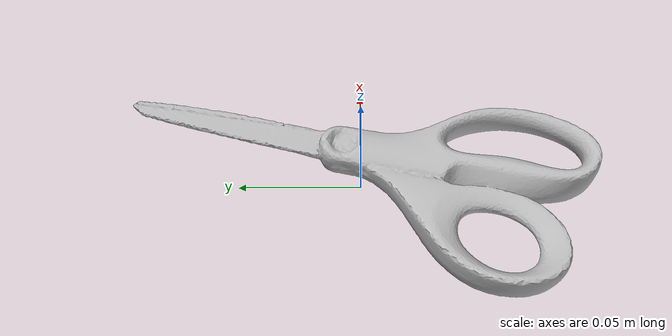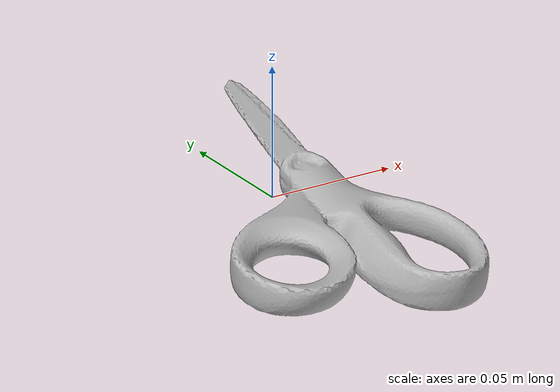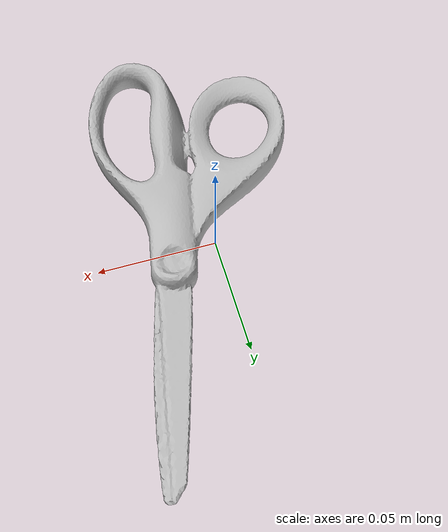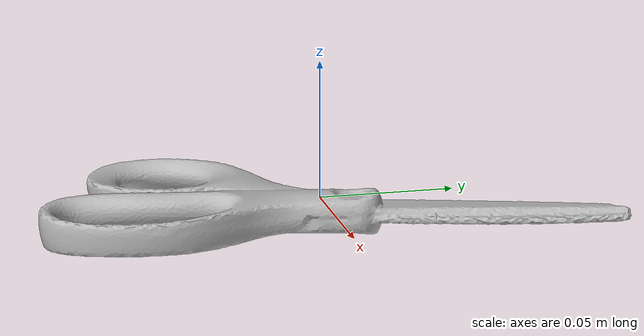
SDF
<?xml version="1.0" ?>
<sdf version="1.7">
<!--
This SDF file was automatically generated using a template modified
and authored by Jinjian Li. The moment of interia is not supposed to be changed.
-->
    <model name="obj_000017">
      <pose>0.0 0.0 0.0 0.0 0.0 0.0</pose>
      <link name="link">
        <inertial>
          <inertia>
           <ixx>9.82153609909249e-05</ixx>
           <ixy>-2.3398610414006263e-05</ixy>
           <ixz>-4.0458601833356497e-07</ixz>
           <iyy>3.275049984181163e-05</iyy>
           <iyz>-4.425028612091869e-07</iyz>
           <izz>0.00012945171354469457</izz>
          </inertia>
          <mass>0.06994273217554424</mass>
        </inertial>
        <collision name="collision">
          <geometry>
            <mesh>
             <uri>obj_000017.obj</uri>
             <scale>1 1 1</scale>
            </mesh>
          </geometry>
        </collision>

        <visual name="visual">
          <geometry>
            <mesh>
             <uri>obj_000017.obj</uri>
             <scale>1 1 1</scale>
            </mesh>
          </geometry>
        </visual>
      </link>
    </model>
</sdf>
